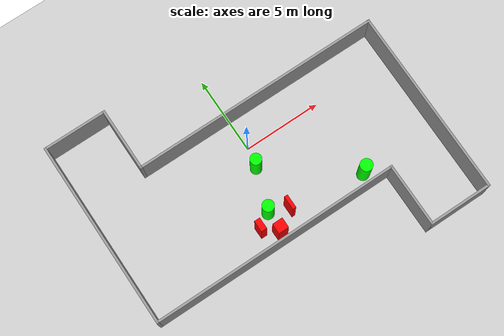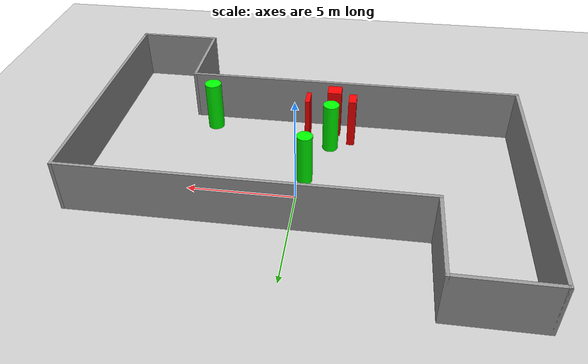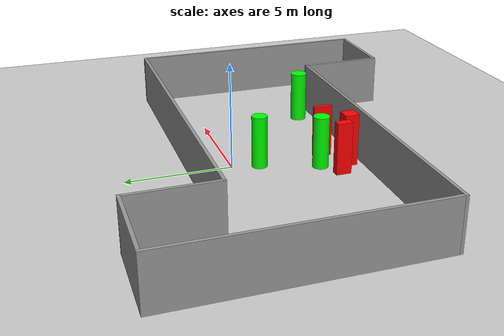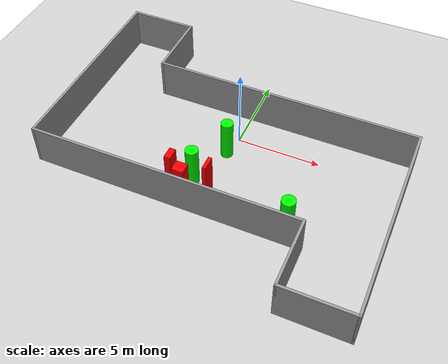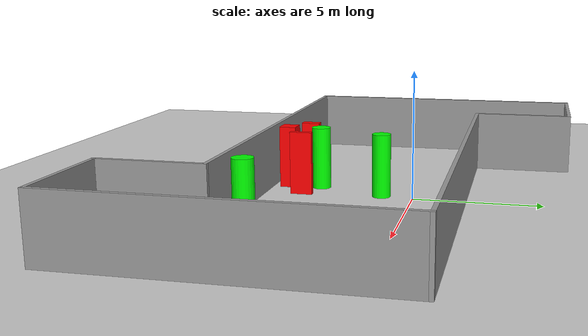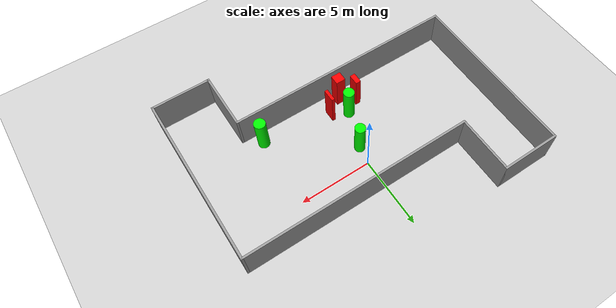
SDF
<sdf version="1.7">
 <world name="default">
  <light name="sun" type="directional">
   <pose>0 0 10 0 -0 0</pose>
   <diffuse>0.8 0.8 0.8 1</diffuse>
   <specular>0.2 0.2 0.2 1</specular>
   <attenuation>
    <range>1000</range>
    <constant>0.9</constant>
    <linear>0.01</linear>
    <quadratic>0.001</quadratic>
   </attenuation>
   <direction>-0.5 0.1 -0.9</direction>
   <spot><inner_angle>0</inner_angle><outer_angle>0</outer_angle><falloff>0</falloff></spot>
  </light>
  <model name="ground_plane">
   <static>1</static>
   <link name="link">
    <collision name="collision">
     <geometry><plane><normal>0 0 1</normal><size>100 100</size></plane></geometry>
     <surface>
      <contact><collide_bitmask>65535</collide_bitmask></contact>
      <friction><ode><mu>100</mu><mu2>50</mu2></ode></friction>
     </surface>
    </collision>
    <visual name="visual">
     <cast_shadows>0</cast_shadows>
     <geometry><plane><normal>0 0 1</normal><size>100 100</size></plane></geometry>
     <material>
      <script><uri>file://media/materials/scripts/gazebo.material</uri><name>Gazebo/Grey</name></script>
     </material>
    </visual>
   </link>
  </model>
  <gravity>0 0 -9.8</gravity>
  <magnetic_field>6e-06 2.3e-05 -4.2e-05</magnetic_field>
  <atmosphere type="adiabatic"/>
  <physics type="ode">
   <max_step_size>0.001</max_step_size>
   <real_time_factor>1</real_time_factor>
   <real_time_update_rate>1000</real_time_update_rate>
  </physics>
  <scene><ambient>0.4 0.4 0.4 1</ambient><background>0.7 0.7 0.7 1</background><shadows>1</shadows></scene>
  <spherical_coordinates>
   <surface_model>EARTH_WGS84</surface_model>
   <latitude_deg>0</latitude_deg>
   <longitude_deg>0</longitude_deg>
   <elevation>0</elevation>
   <heading_deg>0</heading_deg>
  </spherical_coordinates>
  <model name="my_base_walls">
   <link name="Wall_13">
    <collision name="Wall_13_Collision">
     <geometry><box><size>12.15 0.15 2.5</size></box></geometry>
     <pose>0 0 1.25 0 -0 0</pose>
    </collision>
    <visual name="Wall_13_Visual">
     <pose>0 0 1.25 0 -0 0</pose>
     <geometry><box><size>12.15 0.15 2.5</size></box></geometry>
     <material>
      <script><uri>file://media/materials/scripts/gazebo.material</uri><name>Gazebo/Grey</name></script>
      <ambient>1 1 1 1</ambient>
     </material>
     <meta><layer>0</layer></meta>
    </visual>
    <pose>10 -2 0 0 -0 1.5708</pose>
   </link>
   <link name="Wall_15">
    <collision name="Wall_15_Collision">
     <geometry><box><size>16.15 0.15 2.5</size></box></geometry>
     <pose>0 0 1.25 0 -0 0</pose>
    </collision>
    <visual name="Wall_15_Visual">
     <pose>0 0 1.25 0 -0 0</pose>
     <geometry><box><size>16.15 0.15 2.5</size></box></geometry>
     <material>
      <script><uri>file://media/materials/scripts/gazebo.material</uri><name>Gazebo/Grey</name></script>
      <ambient>1 1 1 1</ambient>
     </material>
     <meta><layer>0</layer></meta>
    </visual>
    <pose>2 4 0 0 -0 3.14159</pose>
   </link>
   <link name="Wall_17">
    <collision name="Wall_17_Collision">
     <geometry><box><size>4.15 0.15 2.5</size></box></geometry>
     <pose>0 0 1.25 0 -0 0</pose>
    </collision>
    <visual name="Wall_17_Visual">
     <pose>0 0 1.25 0 -0 0</pose>
     <geometry><box><size>4.15 0.15 2.5</size></box></geometry>
     <material>
      <script><uri>file://media/materials/scripts/gazebo.material</uri><name>Gazebo/Grey</name></script>
      <ambient>1 1 1 1</ambient>
     </material>
     <meta><layer>0</layer></meta>
    </visual>
    <pose>6 -6 0 0 -0 -1.5708</pose>
   </link>
   <link name="Wall_19">
    <collision name="Wall_19_Collision">
     <geometry><box><size>12.15 0.15 2.5</size></box></geometry>
     <pose>0 0 1.25 0 -0 0</pose>
    </collision>
    <visual name="Wall_19_Visual">
     <pose>0 0 1.25 0 -0 0</pose>
     <geometry><box><size>12.15 0.15 2.5</size></box></geometry>
     <material>
      <script><uri>file://media/materials/scripts/gazebo.material</uri><name>Gazebo/Grey</name></script>
      <ambient>1 1 1 1</ambient>
     </material>
     <meta><layer>0</layer></meta>
    </visual>
    <pose>-10 2 0 0 -0 1.5708</pose>
   </link>
   <link name="Wall_21">
    <collision name="Wall_21_Collision">
     <geometry><box><size>4.15 0.15 2.5</size></box></geometry>
     <pose>0 0 1.25 0 -0 0</pose>
    </collision>
    <visual name="Wall_21_Visual">
     <pose>0 0 1.25 0 -0 0</pose>
     <geometry><box><size>4.15 0.15 2.5</size></box></geometry>
     <material>
      <script><uri>file://media/materials/scripts/gazebo.material</uri><name>Gazebo/Grey</name></script>
      <ambient>1 1 1 1</ambient>
     </material>
     <meta><layer>0</layer></meta>
    </visual>
    <pose>-8 8 0 0 -0 0</pose>
   </link>
   <link name="Wall_23">
    <collision name="Wall_23_Collision">
     <geometry><box><size>4.15 0.15 2.5</size></box></geometry>
     <pose>0 0 1.25 0 -0 0</pose>
    </collision>
    <visual name="Wall_23_Visual">
     <pose>0 0 1.25 0 -0 0</pose>
     <geometry><box><size>4.15 0.15 2.5</size></box></geometry>
     <material>
      <script><uri>file://media/materials/scripts/gazebo.material</uri><name>Gazebo/Grey</name></script>
      <ambient>1 1 1 1</ambient>
     </material>
     <meta><layer>0</layer></meta>
    </visual>
    <pose>-6 6 0 0 -0 -1.5708</pose>
   </link>
   <link name="Wall_25">
    <collision name="Wall_25_Collision">
     <geometry><box><size>4.15 0.15 2.5</size></box></geometry>
     <pose>0 0 1.25 0 -0 0</pose>
    </collision>
    <visual name="Wall_25_Visual">
     <pose>0 0 1.25 0 -0 0</pose>
     <geometry><box><size>4.15 0.15 2.5</size></box></geometry>
     <material>
      <script><uri>file://media/materials/scripts/gazebo.material</uri><name>Gazebo/Grey</name></script>
      <ambient>1 1 1 1</ambient>
     </material>
     <meta><layer>0</layer></meta>
    </visual>
    <pose>8 -8 0 0 -0 0</pose>
   </link>
   <link name="Wall_9">
    <collision name="Wall_9_Collision">
     <geometry><box><size>16.15 0.15 2.5</size></box></geometry>
     <pose>0 0 1.25 0 -0 0</pose>
    </collision>
    <visual name="Wall_9_Visual">
     <pose>0 0 1.25 0 -0 0</pose>
     <geometry><box><size>16.15 0.15 2.5</size></box></geometry>
     <material>
      <script><uri>file://media/materials/scripts/gazebo.material</uri><name>Gazebo/Grey</name></script>
      <ambient>1 1 1 1</ambient>
     </material>
     <meta><layer>0</layer></meta>
    </visual>
    <pose>-2 -4 0 0 -0 3.14159</pose>
   </link>
   <static>1</static>
   <pose>-0 -2 0 0 -0 0</pose>
  </model>
  <model name="cylinder1">
   <static>1</static>
   <link name="link">
    <inertial>
     <mass>1</mass>
     <inertia><ixx>0.5</ixx><ixy>0</ixy><ixz>0</ixz><iyy>0.5</iyy><iyz>0</iyz><izz>1</izz></inertia>
    </inertial>
    <collision name="collision">
     <geometry><cylinder><radius>0.3984345079208543</radius><length>2.5</length></cylinder></geometry>
    </collision>
    <visual name="visual">
     <geometry><cylinder><radius>0.3984345079208543</radius><length>2.5</length></cylinder></geometry>
     <material>
      <ambient>0 1 0 1</ambient>
      <diffuse>0 1 0 1</diffuse>
      <specular>0.1 0.1 0.1 1</specular>
      <emissive>0 0 0 0</emissive>
     </material>
    </visual>
   </link>
   <pose>4.861237548954637 -5.125492161487015 1.25 0 0 0</pose>
  </model>
  <model name="cylinder2">
   <static>1</static>
   <link name="link">
    <inertial>
     <mass>1</mass>
     <inertia><ixx>0.5</ixx><ixy>0</ixy><ixz>0</ixz><iyy>0.5</iyy><iyz>0</iyz><izz>1</izz></inertia>
    </inertial>
    <collision name="collision">
     <geometry><cylinder><radius>0.36626382950199377</radius><length>2.5</length></cylinder></geometry>
    </collision>
    <visual name="visual">
     <geometry><cylinder><radius>0.36626382950199377</radius><length>2.5</length></cylinder></geometry>
     <material>
      <ambient>0 1 0 1</ambient>
      <diffuse>0 1 0 1</diffuse>
      <specular>0.1 0.1 0.1 1</specular>
      <emissive>0 0 0 0</emissive>
     </material>
    </visual>
   </link>
   <pose>-0.23751099468458037 -1.2797873101511188 1.25 0 0 0</pose>
  </model>
  <model name="cylinder3">
   <static>1</static>
   <link name="link">
    <inertial>
     <mass>1</mass>
     <inertia><ixx>0.5</ixx><ixy>0</ixy><ixz>0</ixz><iyy>0.5</iyy><iyz>0</iyz><izz>1</izz></inertia>
    </inertial>
    <collision name="collision">
     <geometry><cylinder><radius>0.38086509979175165</radius><length>2.5</length></cylinder></geometry>
    </collision>
    <visual name="visual">
     <geometry><cylinder><radius>0.38086509979175165</radius><length>2.5</length></cylinder></geometry>
     <material>
      <ambient>0 1 0 1</ambient>
      <diffuse>0 1 0 1</diffuse>
      <specular>0.1 0.1 0.1 1</specular>
      <emissive>0 0 0 0</emissive>
     </material>
    </visual>
   </link>
   <pose>-1.172140137188447 -3.9460497176433504 1.25 0 0 0</pose>
  </model>
  <model name="box1">
   <static>1</static>
   <link name="link">
    <inertial>
     <mass>1</mass>
     <inertia><ixx>0.083</ixx><ixy>0</ixy><ixz>0</ixz><iyy>0.083</iyy><iyz>0</iyz><izz>0.083</izz></inertia>
    </inertial>
    <collision name="collision">
     <geometry><box><size>0.6744618899735972 0.6686098266349493 2.5</size></box></geometry>
    </collision>
    <visual name="visual">
     <geometry><box><size>0.6744618899735972 0.6686098266349493 2.5</size></box></geometry>
     <material>
      <ambient>1 0 0 1</ambient>
      <diffuse>1 0 0 1</diffuse>
      <specular>0.1 0.1 0.1 1</specular>
      <emissive>0 0 0 0</emissive>
     </material>
    </visual>
    <sensor name="my_contact" type="contact">
     <contact><collision>box_collision</collision><topic>__default_topic__</topic></contact>
    </sensor>
   </link>
   <pose>-1.2316285399243467 -5.303762145705712 1.25 0 0 0</pose>
  </model>
  <model name="box2">
   <static>1</static>
   <link name="link">
    <inertial>
     <mass>1</mass>
     <inertia><ixx>0.083</ixx><ixy>0</ixy><ixz>0</ixz><iyy>0.083</iyy><iyz>0</iyz><izz>0.083</izz></inertia>
    </inertial>
    <collision name="collision">
     <geometry><box><size>0.22298958376660913 0.8808059428471222 2.5</size></box></geometry>
    </collision>
    <visual name="visual">
     <geometry><box><size>0.22298958376660913 0.8808059428471222 2.5</size></box></geometry>
     <material>
      <ambient>1 0 0 1</ambient>
      <diffuse>1 0 0 1</diffuse>
      <specular>0.1 0.1 0.1 1</specular>
      <emissive>0 0 0 0</emissive>
     </material>
    </visual>
    <sensor name="my_contact" type="contact">
     <contact><collision>box_collision</collision><topic>__default_topic__</topic></contact>
    </sensor>
   </link>
   <pose>-0.01070205936082047 -4.472627659076627 1.25 0 0 0</pose>
  </model>
  <model name="box3">
   <static>1</static>
   <link name="link">
    <inertial>
     <mass>1</mass>
     <inertia><ixx>0.083</ixx><ixy>0</ixy><ixz>0</ixz><iyy>0.083</iyy><iyz>0</iyz><izz>0.083</izz></inertia>
    </inertial>
    <collision name="collision">
     <geometry><box><size>0.3747722826431461 0.7304032272478862 2.5</size></box></geometry>
    </collision>
    <visual name="visual">
     <geometry><box><size>0.3747722826431461 0.7304032272478862 2.5</size></box></geometry>
     <material>
      <ambient>1 0 0 1</ambient>
      <diffuse>1 0 0 1</diffuse>
      <specular>0.1 0.1 0.1 1</specular>
      <emissive>0 0 0 0</emissive>
     </material>
    </visual>
    <sensor name="my_contact" type="contact">
     <contact><collision>box_collision</collision><topic>__default_topic__</topic></contact>
    </sensor>
   </link>
   <pose>-2.1475697910824945 -4.624854248115773 1.25 0 0 0</pose>
  </model>
 </world>
</sdf>
